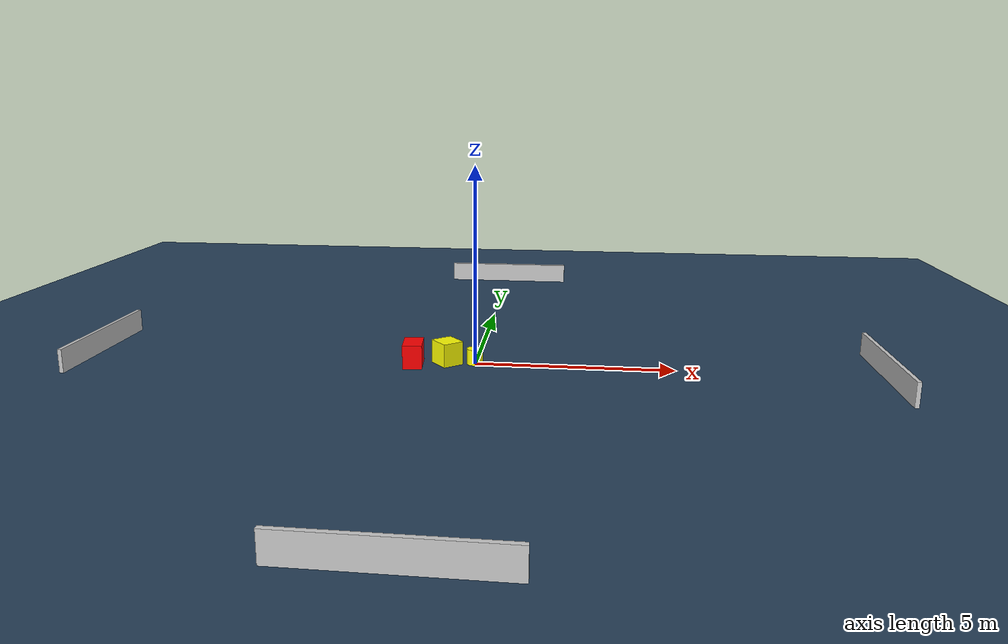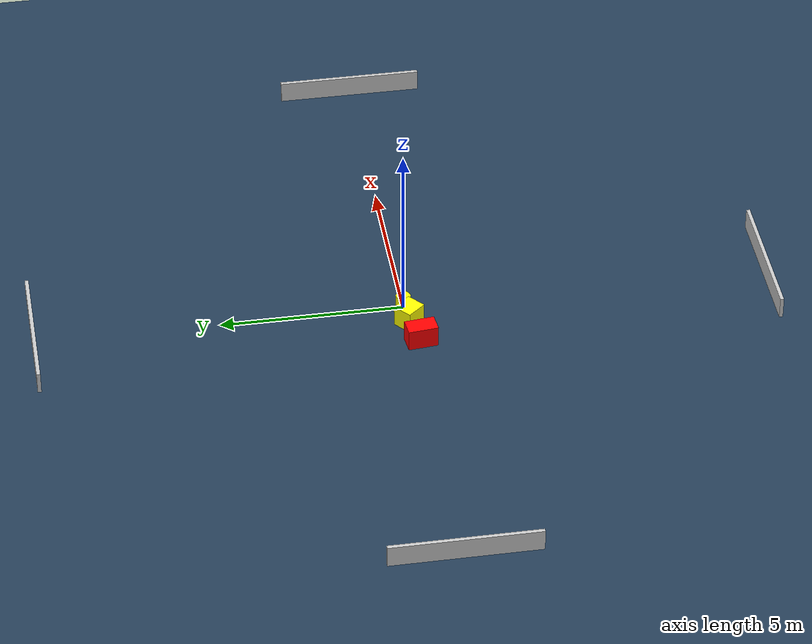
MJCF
<?xml version="1.0" ?>
<mujoco model="generated_environment">
  <option timestep="0.01" integrator="RK4" cone="elliptic"/>
  <default>
    <geom density="1"/>
  </default>
  <asset>
    <texture builtin="gradient" height="3072" name="skybox" rgb1="0.3 0.5 0.7" rgb2="0 0 0" type="skybox" width="512"/>
    <texture builtin="checker" height="300" name="groundplane" rgb1="0.2 0.3 0.4" rgb2="0.1 0.2 0.3" type="2d" width="300"/>
    <material name="groundplane" reflectance="0.2" texrepeat="5 5" texture="groundplane"/>
  </asset>
  <worldbody>
    <light dir="0 0 -1" directional="true" pos="0 0 1.5"/>
    <geom condim="3" friction="0.5 0.005 0.001" material="groundplane" name="floor" pos="0 0 0" size="0 0 0.05" type="plane"/>
    <body name="walls">
      <geom name="wall_1" condim="4" pos="-10.0 0.0 0.3" rgba="0.800000011920929 0.800000011920929 0.800000011920929 1.0" size="0.05 2.0 0.3" type="box"/>
      <geom name="wall_2" condim="4" pos="10.0 0.0 0.3" rgba="0.800000011920929 0.800000011920929 0.800000011920929 1.0" size="0.05 2.0 0.3" type="box"/>
      <geom name="wall_3" condim="4" pos="0.0 -10.0 0.3" rgba="0.800000011920929 0.800000011920929 0.800000011920929 1.0" size="2.0 0.05 0.3" type="box"/>
      <geom name="wall_4" condim="4" pos="0.0 10.0 0.3" rgba="0.800000011920929 0.800000011920929 0.800000011920929 1.0" size="2.0 0.05 0.3" type="box"/>
    </body>
    <body name="robot">
      <joint name="joint_x" type="slide" pos="0 0 0" axis="1 0 0"/>
      <joint name="joint_y" type="slide" pos="0 0 0" axis="0 1 0"/>
      <geom name="robot" type="cylinder" pos="0.0 0.0 0.2" size="0.2 0.2 0.0" mass="5.0" friction="1.0 0.005 0.0001" condim="4" rgba="1.0 1.0 0.0 1.0"/>
    </body>
    <body name="obstacle_1_movable">
      <geom name="obstacle_1_movable" condim="4" pos="-0.6966006892074387 -0.05214784336807575 0.3" euler="0 0 130.29980686896806" friction="0.0 0.005 0.001" rgba="1.0 1.0 0.0 1.0" size="0.2971963687007642 0.27763205520231515 0.3" type="box" mass="0.1"/>
      <joint type="free"/>
    </body>
    <body name="obstacle_2_static">
      <geom name="obstacle_2_static" condim="4" pos="-1.5416287869356673 -0.2478475989761228 0.3" euler="0 0 186.0418665435733" friction="0.0 0.005 0.001" rgba="1.0 0.0 0.0 1.0" size="0.24386951425869774 0.40992922719566594 0.3" type="box"/>
    </body>
  </worldbody>
  <actuator>
    <motor name="actuator_x" joint="joint_x" gear="1" ctrlrange="-1 1"/>
    <motor name="actuator_y" joint="joint_y" gear="1" ctrlrange="-1 1"/>
  </actuator>
</mujoco>
